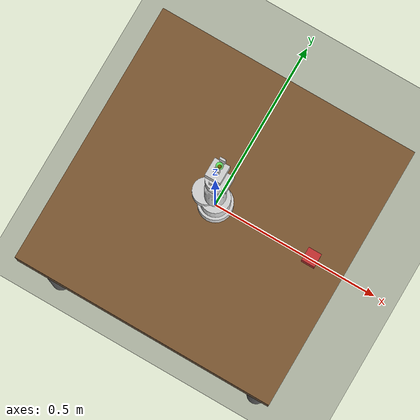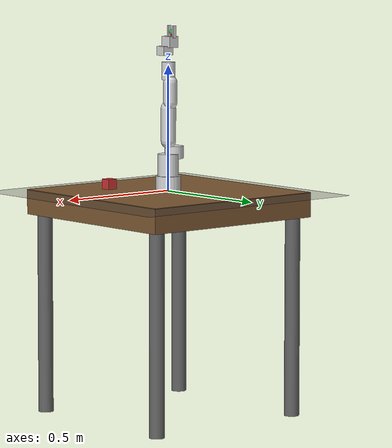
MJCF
<!-- OpenArm Scene: Table-mounted arm with ground plane and objects -->
<mujoco model="openarm_scene">
  <include file="openarm.xml"/>

  <statistic center="0 0 0.4" extent="0.8"/>

  <visual>
    <headlight diffuse="0.6 0.6 0.6" ambient="0.3 0.3 0.3" specular="0 0 0"/>
    <rgba haze="0.15 0.25 0.35 1"/>
    <global azimuth="120" elevation="-20"/>
  </visual>

  <worldbody>
    <!-- Ground -->
    <geom name="ground" type="plane" size="2 2 0.01" material="groundplane" pos="0 0 -0.001"/>

    <!-- Table -->
    <body name="table" pos="0 0 -0.05">
      <geom name="table_top" type="box" size="0.4 0.4 0.05" rgba="0.5 0.35 0.2 1"
            mass="20" friction="1 0.005 0.0001"/>
      <geom name="table_leg1" type="cylinder" size="0.03 0.4" pos="0.35 0.35 -0.45" rgba="0.4 0.4 0.4 1"/>
      <geom name="table_leg2" type="cylinder" size="0.03 0.4" pos="-0.35 0.35 -0.45" rgba="0.4 0.4 0.4 1"/>
      <geom name="table_leg3" type="cylinder" size="0.03 0.4" pos="0.35 -0.35 -0.45" rgba="0.4 0.4 0.4 1"/>
      <geom name="table_leg4" type="cylinder" size="0.03 0.4" pos="-0.35 -0.35 -0.45" rgba="0.4 0.4 0.4 1"/>
    </body>

    <!-- Manipulation objects -->
    <body name="cube" pos="0.3 0 0.05">
      <freejoint name="cube_joint"/>
      <geom name="cube_geom" type="box" size="0.02 0.02 0.02" rgba="0.8 0.2 0.2 1" mass="0.05"
            friction="1 0.005 0.0001" solref="0.01 1"/>
    </body>
  </worldbody>
</mujoco>

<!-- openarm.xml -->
<mujoco model="openarm">
  <compiler angle="radian" meshdir="assets/" autolimits="true"/>
  <option integrator="implicitfast" cone="elliptic" impratio="10"/>

  <default>
    <default class="openarm">
      <joint armature="0.1" damping="2.0" frictionloss="0.1"/>
      <position kp="80" kv="4"/>
      <default class="shoulder">
        <joint armature="0.15" damping="3.0"/>
        <position kp="120" kv="6"/>
      </default>
      <default class="elbow">
        <joint armature="0.12" damping="2.5"/>
        <position kp="100" kv="5"/>
      </default>
      <default class="wrist">
        <joint armature="0.05" damping="1.0"/>
        <position kp="40" kv="2"/>
      </default>
      <default class="gripper">
        <joint armature="0.01" damping="0.5"/>
        <position kp="200" kv="10"/>
      </default>
      <default class="visual">
        <geom type="mesh" contype="0" conaffinity="0" group="2" rgba="0.85 0.85 0.85 1"/>
      </default>
      <default class="collision">
        <geom type="capsule" group="3" rgba="0.8 0.6 0.4 0.5"/>
      </default>
    </default>
  </default>

  <asset>
    <texture type="2d" name="groundplane" builtin="checker" mark="edge" rgb1="0.25 0.26 0.25" rgb2="0.22 0.22 0.22" markrgb="0.3 0.3 0.3" width="300" height="300"/>
    <material name="groundplane" texture="groundplane" texrepeat="5 5" texuniform="true" reflectance="0.2"/>
    <material name="metal_dark" rgba="0.3 0.3 0.35 1" specular="0.5" shininess="0.5"/>
    <material name="metal_light" rgba="0.75 0.75 0.8 1" specular="0.7" shininess="0.7"/>
    <material name="actuator_blue" rgba="0.2 0.3 0.6 1" specular="0.4" shininess="0.3"/>
    <material name="gripper_dark" rgba="0.25 0.25 0.3 1" specular="0.3" shininess="0.2"/>
  </asset>

  <worldbody>
    <body name="base_link" pos="0 0 0">
      <inertial pos="0 0 0" mass="2.0" diaginertia="0.005 0.005 0.005"/>
      <body name="link0" pos="0 0 0">
        <inertial pos="-0.000948 0.000158 0.030769" mass="1.143" fullinertia="0.001128 0.000962 0.00147 -4e-06 -3.3e-05 -7e-06"/>
        <geom class="collision" size="0.045 0.03" pos="0 0 0.03" rgba="0.3 0.3 0.35 0.5"/>
        <geom class="visual" type="cylinder" size="0.05 0.03" pos="0 0 0.03" material="metal_dark"/>
        <body name="link1" pos="0 0 0.0625">
          <inertial pos="0.001147 0.000033 0.053953" mass="1.142" fullinertia="0.001567 0.001273 0.001016 -1e-06 -2.9e-05 1e-06"/>
          <joint name="joint1" class="shoulder" axis="0 0 1" range="-1.3963 3.4907" type="hinge"/>
          <geom class="collision" size="0.04 0.05" pos="0 0 0.04"/>
          <geom class="visual" type="cylinder" size="0.042 0.045" pos="0 0 0.04" material="actuator_blue"/>
          <body name="link2" pos="-0.0301 0 0.06">
            <inertial pos="0.008396 0 0.032566" mass="0.278" fullinertia="0.000359 0.000376 0.000232 1e-06 -0.000109 1e-06"/>
            <joint name="joint2" class="shoulder" axis="-1 0 0" range="-1.7453 1.7453" type="hinge"/>
            <geom class="collision" size="0.035 0.03" pos="0 0 0.03"/>
            <geom class="visual" type="cylinder" size="0.037 0.025" pos="0 0 0.03" material="metal_light"/>
            <body name="link3" pos="0.0301 0 0.06625">
              <inertial pos="-0.002105 0.000555 0.090475" mass="1.074" fullinertia="0.004372 0.004319 0.000661 1e-06 1.1e-05 -3.6e-05"/>
              <joint name="joint3" class="elbow" axis="0 0 1" range="-1.5708 1.5708" type="hinge"/>
              <geom class="collision" size="0.032 0.075" pos="0 0 0.075"/>
              <geom class="visual" type="capsule" size="0.03 0.065" pos="0 0 0.075" material="metal_dark"/>
              <body name="link4" pos="0 0.0315 0.15375">
                <inertial pos="-0.0029 -0.03031 0.0634" mass="0.635" fullinertia="0.000623 0.000511 0.000334 -1e-06 -1.9e-05 3.8e-05"/>
                <joint name="joint4" class="elbow" axis="0 1 0" range="0 2.4435" type="hinge"/>
                <geom class="collision" size="0.03 0.05" pos="0 -0.02 0.05"/>
                <geom class="visual" type="capsule" size="0.028 0.04" pos="0 -0.02 0.05" material="actuator_blue"/>
                <body name="link5" pos="0 -0.0315 0.0955">
                  <inertial pos="-0.00305 0.000887 0.04308" mass="0.616" fullinertia="0.000423 0.000445 0.000324 -8e-06 6e-06 -6e-06"/>
                  <joint name="joint5" class="wrist" axis="0 0 1" range="-1.5708 1.5708" type="hinge"/>
                  <geom class="collision" size="0.025 0.04" pos="0 0 0.04"/>
                  <geom class="visual" type="cylinder" size="0.027 0.035" pos="0 0 0.04" material="metal_light"/>
                  <body name="link6" pos="0.0375 0 0.1205">
                    <inertial pos="-0.037137 0.000332 -0.00009" mass="0.475" fullinertia="0.000143 0.000157 0.000159 1e-06 1e-06 1e-06"/>
                    <joint name="joint6" class="wrist" axis="1 0 0" range="-0.7854 0.7854" type="hinge"/>
                    <geom class="collision" size="0.022 0.02" pos="-0.02 0 0"/>
                    <geom class="visual" type="box" size="0.025 0.022 0.018" pos="-0.02 0 0" material="metal_dark"/>
                    <body name="link7" pos="-0.0375 0 0">
                      <inertial pos="0.000069 0.012662 0.069519" mass="0.466" fullinertia="0.000639 0.000497 0.000342 1e-06 1e-06 8.9e-05"/>
                      <joint name="joint7" class="wrist" axis="0 1 0" range="-1.5708 1.5708" type="hinge"/>
                      <geom class="collision" size="0.022 0.025" pos="0 0.01 0.03"/>
                      <geom class="visual" type="box" size="0.022 0.025 0.022" pos="0 0.01 0.035" material="actuator_blue"/>
                      <body name="ee_link" pos="0 0.0205 0">
                        <site name="ee_site" pos="0 0 0.06" size="0.005" rgba="1 0 0 1"/>
                        <body name="finger1" pos="0 -0.015 0.05">
                          <inertial pos="0 0 0.025" mass="0.05" diaginertia="1e-05 1e-05 5e-06"/>
                          <joint name="finger_joint1" class="gripper" axis="0 1 0" range="0 0.044" type="slide"/>
                          <geom class="collision" size="0.008 0.003 0.025" type="box" pos="0 0 0.025"/>
                          <geom class="visual" type="box" size="0.008 0.003 0.025" pos="0 0 0.025" material="gripper_dark"/>
                        </body>
                        <body name="finger2" pos="0 0.015 0.05">
                          <inertial pos="0 0 0.025" mass="0.05" diaginertia="1e-05 1e-05 5e-06"/>
                          <joint name="finger_joint2" class="gripper" axis="0 -1 0" range="0 0.044" type="slide"/>
                          <geom class="collision" size="0.008 0.003 0.025" type="box" pos="0 0 0.025"/>
                          <geom class="visual" type="box" size="0.008 0.003 0.025" pos="0 0 0.025" material="gripper_dark"/>
                        </body>
                        <site name="grasp_site" pos="0 0 0.075" size="0.01" rgba="0 1 0 0.5"/>
                      </body>
                    </body>
                  </body>
                </body>
              </body>
            </body>
          </body>
        </body>
      </body>
    </body>
  </worldbody>

  <actuator>
    <position name="act_joint1" joint="joint1" class="shoulder" ctrlrange="-1.3963 3.4907"/>
    <position name="act_joint2" joint="joint2" class="shoulder" ctrlrange="-1.7453 1.7453"/>
    <position name="act_joint3" joint="joint3" class="elbow" ctrlrange="-1.5708 1.5708"/>
    <position name="act_joint4" joint="joint4" class="elbow" ctrlrange="0 2.4435"/>
    <position name="act_joint5" joint="joint5" class="wrist" ctrlrange="-1.5708 1.5708"/>
    <position name="act_joint6" joint="joint6" class="wrist" ctrlrange="-0.7854 0.7854"/>
    <position name="act_joint7" joint="joint7" class="wrist" ctrlrange="-1.5708 1.5708"/>
    <position name="act_finger1" joint="finger_joint1" class="gripper" ctrlrange="0 0.044"/>
    <position name="act_finger2" joint="finger_joint2" class="gripper" ctrlrange="0 0.044"/>
  </actuator>

  <sensor>
    <jointpos name="joint1_pos" joint="joint1"/>
    <jointpos name="joint2_pos" joint="joint2"/>
    <jointpos name="joint3_pos" joint="joint3"/>
    <jointpos name="joint4_pos" joint="joint4"/>
    <jointpos name="joint5_pos" joint="joint5"/>
    <jointpos name="joint6_pos" joint="joint6"/>
    <jointpos name="joint7_pos" joint="joint7"/>
    <jointpos name="finger1_pos" joint="finger_joint1"/>
    <jointpos name="finger2_pos" joint="finger_joint2"/>
    <jointvel name="joint1_vel" joint="joint1"/>
    <jointvel name="joint2_vel" joint="joint2"/>
    <jointvel name="joint3_vel" joint="joint3"/>
    <jointvel name="joint4_vel" joint="joint4"/>
    <jointvel name="joint5_vel" joint="joint5"/>
    <jointvel name="joint6_vel" joint="joint6"/>
    <jointvel name="joint7_vel" joint="joint7"/>
    <framepos name="ee_pos" objtype="site" objname="ee_site"/>
    <framequat name="ee_quat" objtype="site" objname="ee_site"/>
  </sensor>

  <keyframe>
    <key name="home" qpos="1.57 0 -1.57 1.57 0 0 0 0.022 0.022"/>
  </keyframe>
</mujoco>
